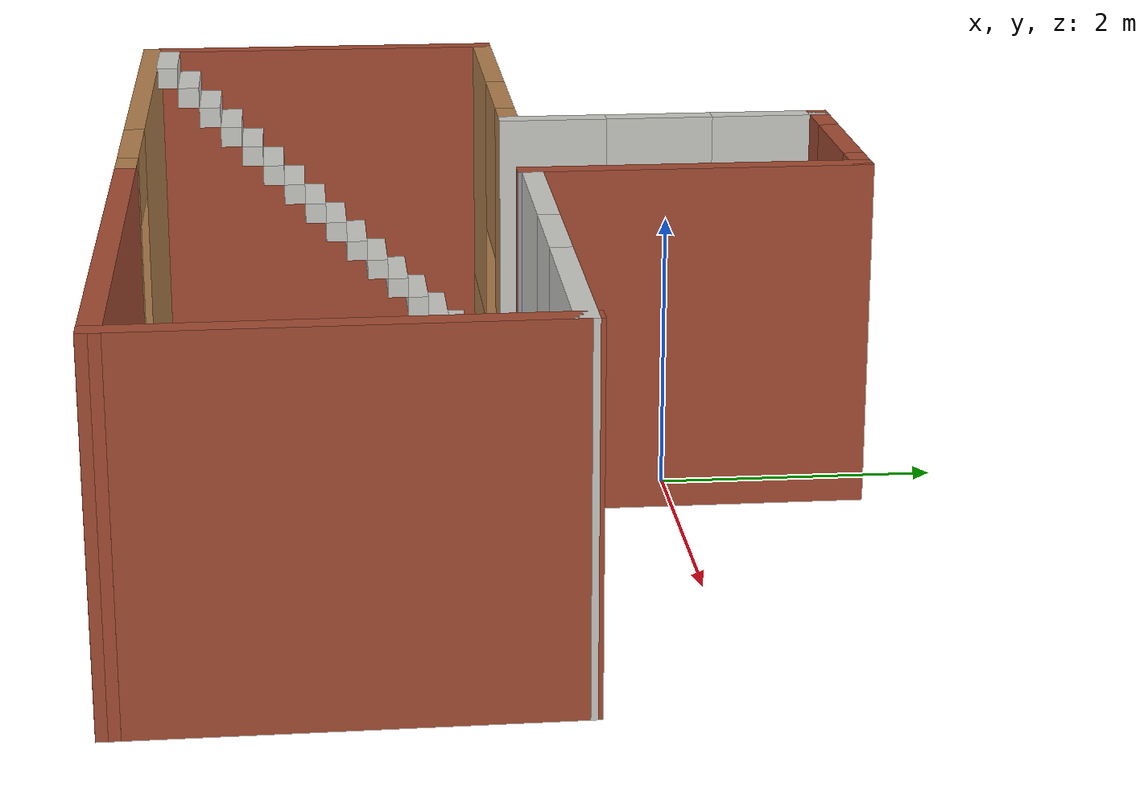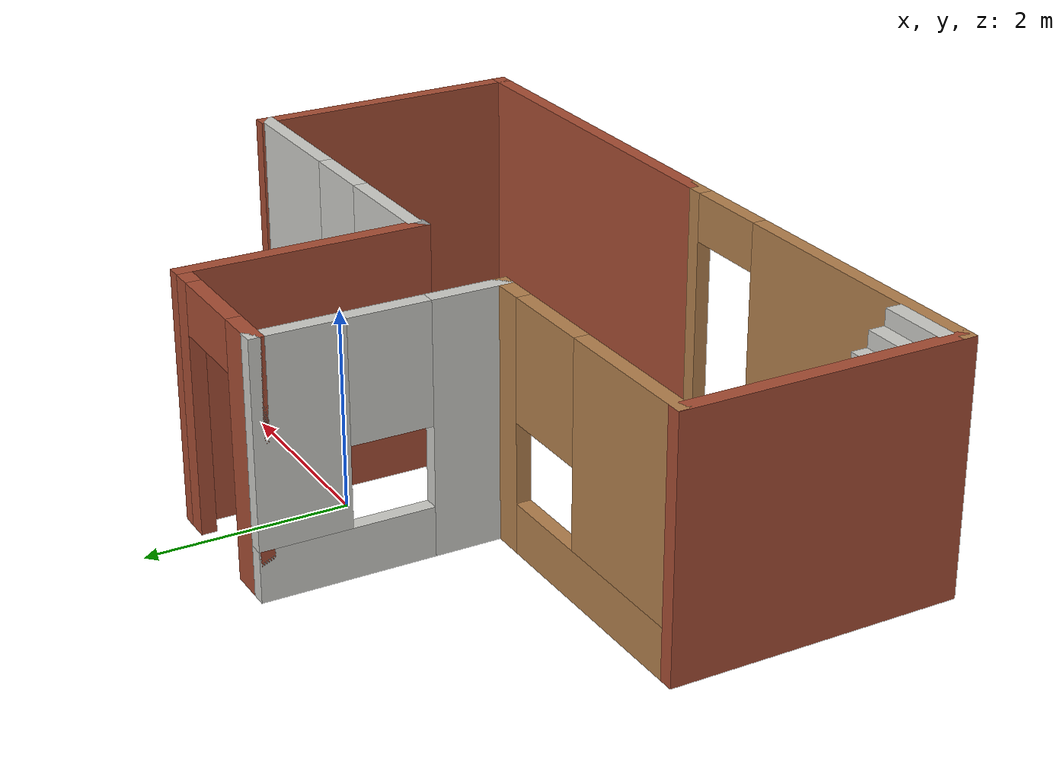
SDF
<?xml version='1.0'?>
<sdf version='1.7'>
  <model name='myspace'>
    <pose>-0.054613 -1.24662 0 0 -0 0</pose>
    <link name='Stairs_0'>
      <visual name='Stairs_0_Visual_0'>
        <pose>-3.56908 -0.045001 0.083333 0 -0 0</pose>
        <geometry>
          <box>
            <size>0.71 0.169333 0.166667</size>
          </box>
        </geometry>
        <material>
          <script>
            <uri>file://media/materials/scripts/gazebo.material</uri>
            <name>Gazebo/CeilingTiled</name>
          </script>
          <ambient>0.996078 0.47451 0.0196078 1</ambient>
        </material>
        <meta>
          <layer>0</layer>
        </meta>
      </visual>
      <collision name='Stairs_0_Collision_0'>
        <geometry>
          <box>
            <size>0.71 0.169333 0.166667</size>
          </box>
        </geometry>
        <pose>-3.56908 -0.045001 0.083333 0 -0 0</pose>
      </collision>
      <visual name='Stairs_0_Visual_1'>
        <pose>-3.56908 -0.214334 0.25 0 -0 0</pose>
        <geometry>
          <box>
            <size>0.71 0.169333 0.166667</size>
          </box>
        </geometry>
        <material>
          <script>
            <uri>file://media/materials/scripts/gazebo.material</uri>
            <name>Gazebo/CeilingTiled</name>
          </script>
          <ambient>0.996078 0.47451 0.0196078 1</ambient>
        </material>
        <meta>
          <layer>0</layer>
        </meta>
      </visual>
      <collision name='Stairs_0_Collision_1'>
        <geometry>
          <box>
            <size>0.71 0.169333 0.166667</size>
          </box>
        </geometry>
        <pose>-3.56908 -0.214334 0.25 0 -0 0</pose>
      </collision>
      <visual name='Stairs_0_Visual_2'>
        <pose>-3.56908 -0.383668 0.416667 0 -0 0</pose>
        <geometry>
          <box>
            <size>0.71 0.169333 0.166667</size>
          </box>
        </geometry>
        <material>
          <script>
            <uri>file://media/materials/scripts/gazebo.material</uri>
            <name>Gazebo/CeilingTiled</name>
          </script>
          <ambient>0.996078 0.47451 0.0196078 1</ambient>
        </material>
        <meta>
          <layer>0</layer>
        </meta>
      </visual>
      <collision name='Stairs_0_Collision_2'>
        <geometry>
          <box>
            <size>0.71 0.169333 0.166667</size>
          </box>
        </geometry>
        <pose>-3.56908 -0.383668 0.416667 0 -0 0</pose>
      </collision>
      <visual name='Stairs_0_Visual_3'>
        <pose>-3.56908 -0.553001 0.583333 0 -0 0</pose>
        <geometry>
          <box>
            <size>0.71 0.169333 0.166667</size>
          </box>
        </geometry>
        <material>
          <script>
            <uri>file://media/materials/scripts/gazebo.material</uri>
            <name>Gazebo/CeilingTiled</name>
          </script>
          <ambient>0.996078 0.47451 0.0196078 1</ambient>
        </material>
        <meta>
          <layer>0</layer>
        </meta>
      </visual>
      <collision name='Stairs_0_Collision_3'>
        <geometry>
          <box>
            <size>0.71 0.169333 0.166667</size>
          </box>
        </geometry>
        <pose>-3.56908 -0.553001 0.583333 0 -0 0</pose>
      </collision>
      <visual name='Stairs_0_Visual_4'>
        <pose>-3.56908 -0.722334 0.75 0 -0 0</pose>
        <geometry>
          <box>
            <size>0.71 0.169333 0.166667</size>
          </box>
        </geometry>
        <material>
          <script>
            <uri>file://media/materials/scripts/gazebo.material</uri>
            <name>Gazebo/CeilingTiled</name>
          </script>
          <ambient>0.996078 0.47451 0.0196078 1</ambient>
        </material>
        <meta>
          <layer>0</layer>
        </meta>
      </visual>
      <collision name='Stairs_0_Collision_4'>
        <geometry>
          <box>
            <size>0.71 0.169333 0.166667</size>
          </box>
        </geometry>
        <pose>-3.56908 -0.722334 0.75 0 -0 0</pose>
      </collision>
      <visual name='Stairs_0_Visual_5'>
        <pose>-3.56908 -0.891668 0.916667 0 -0 0</pose>
        <geometry>
          <box>
            <size>0.71 0.169333 0.166667</size>
          </box>
        </geometry>
        <material>
          <script>
            <uri>file://media/materials/scripts/gazebo.material</uri>
            <name>Gazebo/CeilingTiled</name>
          </script>
          <ambient>0.996078 0.47451 0.0196078 1</ambient>
        </material>
        <meta>
          <layer>0</layer>
        </meta>
      </visual>
      <collision name='Stairs_0_Collision_5'>
        <geometry>
          <box>
            <size>0.71 0.169333 0.166667</size>
          </box>
        </geometry>
        <pose>-3.56908 -0.891668 0.916667 0 -0 0</pose>
      </collision>
      <visual name='Stairs_0_Visual_6'>
        <pose>-3.56908 -1.061 1.08333 0 -0 0</pose>
        <geometry>
          <box>
            <size>0.71 0.169333 0.166667</size>
          </box>
        </geometry>
        <material>
          <script>
            <uri>file://media/materials/scripts/gazebo.material</uri>
            <name>Gazebo/CeilingTiled</name>
          </script>
          <ambient>0.996078 0.47451 0.0196078 1</ambient>
        </material>
        <meta>
          <layer>0</layer>
        </meta>
      </visual>
      <collision name='Stairs_0_Collision_6'>
        <geometry>
          <box>
            <size>0.71 0.169333 0.166667</size>
          </box>
        </geometry>
        <pose>-3.56908 -1.061 1.08333 0 -0 0</pose>
      </collision>
      <visual name='Stairs_0_Visual_7'>
        <pose>-3.56908 -1.23033 1.25 0 -0 0</pose>
        <geometry>
          <box>
            <size>0.71 0.169333 0.166667</size>
          </box>
        </geometry>
        <material>
          <script>
            <uri>file://media/materials/scripts/gazebo.material</uri>
            <name>Gazebo/CeilingTiled</name>
          </script>
          <ambient>0.996078 0.47451 0.0196078 1</ambient>
        </material>
        <meta>
          <layer>0</layer>
        </meta>
      </visual>
      <collision name='Stairs_0_Collision_7'>
        <geometry>
          <box>
            <size>0.71 0.169333 0.166667</size>
          </box>
        </geometry>
        <pose>-3.56908 -1.23033 1.25 0 -0 0</pose>
      </collision>
      <visual name='Stairs_0_Visual_8'>
        <pose>-3.56908 -1.39967 1.41667 0 -0 0</pose>
        <geometry>
          <box>
            <size>0.71 0.169333 0.166667</size>
          </box>
        </geometry>
        <material>
          <script>
            <uri>file://media/materials/scripts/gazebo.material</uri>
            <name>Gazebo/CeilingTiled</name>
          </script>
          <ambient>0.996078 0.47451 0.0196078 1</ambient>
        </material>
        <meta>
          <layer>0</layer>
        </meta>
      </visual>
      <collision name='Stairs_0_Collision_8'>
        <geometry>
          <box>
            <size>0.71 0.169333 0.166667</size>
          </box>
        </geometry>
        <pose>-3.56908 -1.39967 1.41667 0 -0 0</pose>
      </collision>
      <visual name='Stairs_0_Visual_9'>
        <pose>-3.56908 -1.569 1.58333 0 -0 0</pose>
        <geometry>
          <box>
            <size>0.71 0.169333 0.166667</size>
          </box>
        </geometry>
        <material>
          <script>
            <uri>file://media/materials/scripts/gazebo.material</uri>
            <name>Gazebo/CeilingTiled</name>
          </script>
          <ambient>0.996078 0.47451 0.0196078 1</ambient>
        </material>
        <meta>
          <layer>0</layer>
        </meta>
      </visual>
      <collision name='Stairs_0_Collision_9'>
        <geometry>
          <box>
            <size>0.71 0.169333 0.166667</size>
          </box>
        </geometry>
        <pose>-3.56908 -1.569 1.58333 0 -0 0</pose>
      </collision>
      <visual name='Stairs_0_Visual_10'>
        <pose>-3.56908 -1.73833 1.75 0 -0 0</pose>
        <geometry>
          <box>
            <size>0.71 0.169333 0.166667</size>
          </box>
        </geometry>
        <material>
          <script>
            <uri>file://media/materials/scripts/gazebo.material</uri>
            <name>Gazebo/CeilingTiled</name>
          </script>
          <ambient>0.996078 0.47451 0.0196078 1</ambient>
        </material>
        <meta>
          <layer>0</layer>
        </meta>
      </visual>
      <collision name='Stairs_0_Collision_10'>
        <geometry>
          <box>
            <size>0.71 0.169333 0.166667</size>
          </box>
        </geometry>
        <pose>-3.56908 -1.73833 1.75 0 -0 0</pose>
      </collision>
      <visual name='Stairs_0_Visual_11'>
        <pose>-3.56908 -1.90767 1.91667 0 -0 0</pose>
        <geometry>
          <box>
            <size>0.71 0.169333 0.166667</size>
          </box>
        </geometry>
        <material>
          <script>
            <uri>file://media/materials/scripts/gazebo.material</uri>
            <name>Gazebo/CeilingTiled</name>
          </script>
          <ambient>0.996078 0.47451 0.0196078 1</ambient>
        </material>
        <meta>
          <layer>0</layer>
        </meta>
      </visual>
      <collision name='Stairs_0_Collision_11'>
        <geometry>
          <box>
            <size>0.71 0.169333 0.166667</size>
          </box>
        </geometry>
        <pose>-3.56908 -1.90767 1.91667 0 -0 0</pose>
      </collision>
      <visual name='Stairs_0_Visual_12'>
        <pose>-3.56908 -2.077 2.08333 0 -0 0</pose>
        <geometry>
          <box>
            <size>0.71 0.169333 0.166667</size>
          </box>
        </geometry>
        <material>
          <script>
            <uri>file://media/materials/scripts/gazebo.material</uri>
            <name>Gazebo/CeilingTiled</name>
          </script>
          <ambient>0.996078 0.47451 0.0196078 1</ambient>
        </material>
        <meta>
          <layer>0</layer>
        </meta>
      </visual>
      <collision name='Stairs_0_Collision_12'>
        <geometry>
          <box>
            <size>0.71 0.169333 0.166667</size>
          </box>
        </geometry>
        <pose>-3.56908 -2.077 2.08333 0 -0 0</pose>
      </collision>
      <visual name='Stairs_0_Visual_13'>
        <pose>-3.56908 -2.24633 2.25 0 -0 0</pose>
        <geometry>
          <box>
            <size>0.71 0.169333 0.166667</size>
          </box>
        </geometry>
        <material>
          <script>
            <uri>file://media/materials/scripts/gazebo.material</uri>
            <name>Gazebo/CeilingTiled</name>
          </script>
          <ambient>0.996078 0.47451 0.0196078 1</ambient>
        </material>
        <meta>
          <layer>0</layer>
        </meta>
      </visual>
      <collision name='Stairs_0_Collision_13'>
        <geometry>
          <box>
            <size>0.71 0.169333 0.166667</size>
          </box>
        </geometry>
        <pose>-3.56908 -2.24633 2.25 0 -0 0</pose>
      </collision>
      <visual name='Stairs_0_Visual_14'>
        <pose>-3.56908 -2.41567 2.41667 0 -0 0</pose>
        <geometry>
          <box>
            <size>0.71 0.169333 0.166667</size>
          </box>
        </geometry>
        <material>
          <script>
            <uri>file://media/materials/scripts/gazebo.material</uri>
            <name>Gazebo/CeilingTiled</name>
          </script>
          <ambient>0.996078 0.47451 0.0196078 1</ambient>
        </material>
        <meta>
          <layer>0</layer>
        </meta>
      </visual>
      <collision name='Stairs_0_Collision_14'>
        <geometry>
          <box>
            <size>0.71 0.169333 0.166667</size>
          </box>
        </geometry>
        <pose>-3.56908 -2.41567 2.41667 0 -0 0</pose>
      </collision>
    </link>
    <link name='Wall_0'>
      <pose>-1.92539 -2.56338 0 0 -0 0</pose>
      <visual name='Wall_0_Visual_0'>
        <pose>-0.606848 0 1.25 0 -0 0</pose>
        <geometry>
          <box>
            <size>3.0363 0.15 2.5</size>
          </box>
        </geometry>
        <material>
          <script>
            <uri>file://media/materials/scripts/gazebo.material</uri>
            <name>Gazebo/Wood</name>
          </script>
          <ambient>1 1 1 1</ambient>
        </material>
        <meta>
          <layer>0</layer>
        </meta>
      </visual>
      <collision name='Wall_0_Collision_0'>
        <geometry>
          <box>
            <size>3.0363 0.15 2.5</size>
          </box>
        </geometry>
        <pose>-0.606848 0 1.25 0 -0 0</pose>
      </collision>
      <visual name='Wall_0_Visual_1'>
        <pose>1.96815 0 1.25 0 -0 0</pose>
        <geometry>
          <box>
            <size>0.313696 0.15 2.5</size>
          </box>
        </geometry>
        <material>
          <script>
            <uri>file://media/materials/scripts/gazebo.material</uri>
            <name>Gazebo/Wood</name>
          </script>
          <ambient>1 1 1 1</ambient>
        </material>
        <meta>
          <layer>0</layer>
        </meta>
      </visual>
      <collision name='Wall_0_Collision_1'>
        <geometry>
          <box>
            <size>0.313696 0.15 2.5</size>
          </box>
        </geometry>
        <pose>1.96815 0 1.25 0 -0 0</pose>
      </collision>
      <visual name='Wall_0_Visual_2'>
        <pose>1.3613 0 2.25 0 -0 0</pose>
        <geometry>
          <box>
            <size>0.9 0.15 0.5</size>
          </box>
        </geometry>
        <material>
          <script>
            <uri>file://media/materials/scripts/gazebo.material</uri>
            <name>Gazebo/Wood</name>
          </script>
          <ambient>1 1 1 1</ambient>
        </material>
        <meta>
          <layer>0</layer>
        </meta>
      </visual>
      <collision name='Wall_0_Collision_2'>
        <geometry>
          <box>
            <size>0.9 0.15 0.5</size>
          </box>
        </geometry>
        <pose>1.3613 0 2.25 0 -0 0</pose>
      </collision>
    </link>
    <link name='Wall_12'>
      <pose>-1.11552 1.38915 0 0 -0 1.5708</pose>
      <visual name='Wall_12_Visual_0'>
        <pose>-0.846617 0 1.25 0 -0 0</pose>
        <geometry>
          <box>
            <size>0.806765 0.15 2.5</size>
          </box>
        </geometry>
        <material>
          <script>
            <uri>file://media/materials/scripts/gazebo.material</uri>
            <name>Gazebo/CeilingTiled</name>
          </script>
          <ambient>0 1 0 1</ambient>
        </material>
        <meta>
          <layer>0</layer>
        </meta>
      </visual>
      <collision name='Wall_12_Collision_0'>
        <geometry>
          <box>
            <size>0.806765 0.15 2.5</size>
          </box>
        </geometry>
        <pose>-0.846617 0 1.25 0 -0 0</pose>
      </collision>
      <visual name='Wall_12_Visual_1'>
        <pose>0.403383 0 0.25 0 -0 0</pose>
        <geometry>
          <box>
            <size>1.69324 0.15 0.5</size>
          </box>
        </geometry>
        <material>
          <script>
            <uri>file://media/materials/scripts/gazebo.material</uri>
            <name>Gazebo/CeilingTiled</name>
          </script>
          <ambient>0 1 0 1</ambient>
        </material>
        <meta>
          <layer>0</layer>
        </meta>
      </visual>
      <collision name='Wall_12_Collision_1'>
        <geometry>
          <box>
            <size>1.69324 0.15 0.5</size>
          </box>
        </geometry>
        <pose>0.403383 0 0.25 0 -0 0</pose>
      </collision>
      <visual name='Wall_12_Visual_2'>
        <pose>0.803383 0 1.5 0 -0 0</pose>
        <geometry>
          <box>
            <size>0.893235 0.15 2</size>
          </box>
        </geometry>
        <material>
          <script>
            <uri>file://media/materials/scripts/gazebo.material</uri>
            <name>Gazebo/CeilingTiled</name>
          </script>
          <ambient>0 1 0 1</ambient>
        </material>
        <meta>
          <layer>0</layer>
        </meta>
      </visual>
      <collision name='Wall_12_Collision_2'>
        <geometry>
          <box>
            <size>0.893235 0.15 2</size>
          </box>
        </geometry>
        <pose>0.803383 0 1.5 0 -0 0</pose>
      </collision>
      <visual name='Wall_12_Visual_3'>
        <pose>-0.043235 0 1.9 0 -0 0</pose>
        <geometry>
          <box>
            <size>0.8 0.15 1.2</size>
          </box>
        </geometry>
        <material>
          <script>
            <uri>file://media/materials/scripts/gazebo.material</uri>
            <name>Gazebo/CeilingTiled</name>
          </script>
          <ambient>0 1 0 1</ambient>
        </material>
        <meta>
          <layer>0</layer>
        </meta>
      </visual>
      <collision name='Wall_12_Collision_3'>
        <geometry>
          <box>
            <size>0.8 0.15 1.2</size>
          </box>
        </geometry>
        <pose>-0.043235 0 1.9 0 -0 0</pose>
      </collision>
    </link>
    <link name='Wall_13'>
      <pose>-0.315524 2.56415 0 0 -0 0</pose>
      <visual name='Wall_13_Visual_0'>
        <pose>-0.631589 0 1.25 0 -0 0</pose>
        <geometry>
          <box>
            <size>0.486822 0.15 2.5</size>
          </box>
        </geometry>
        <material>
          <script>
            <uri>file://media/materials/scripts/gazebo.material</uri>
            <name>Gazebo/Bricks</name>
          </script>
          <ambient>1 1 1 1</ambient>
        </material>
        <meta>
          <layer>0</layer>
        </meta>
      </visual>
      <collision name='Wall_13_Collision_0'>
        <geometry>
          <box>
            <size>0.486822 0.15 2.5</size>
          </box>
        </geometry>
        <pose>-0.631589 0 1.25 0 -0 0</pose>
      </collision>
      <visual name='Wall_13_Visual_1'>
        <pose>0.693411 0 1.25 0 -0 0</pose>
        <geometry>
          <box>
            <size>0.363178 0.15 2.5</size>
          </box>
        </geometry>
        <material>
          <script>
            <uri>file://media/materials/scripts/gazebo.material</uri>
            <name>Gazebo/Bricks</name>
          </script>
          <ambient>1 1 1 1</ambient>
        </material>
        <meta>
          <layer>0</layer>
        </meta>
      </visual>
      <collision name='Wall_13_Collision_1'>
        <geometry>
          <box>
            <size>0.363178 0.15 2.5</size>
          </box>
        </geometry>
        <pose>0.693411 0 1.25 0 -0 0</pose>
      </collision>
      <visual name='Wall_13_Visual_2'>
        <pose>0.061822 0 2.25 0 -0 0</pose>
        <geometry>
          <box>
            <size>0.9 0.15 0.5</size>
          </box>
        </geometry>
        <material>
          <script>
            <uri>file://media/materials/scripts/gazebo.material</uri>
            <name>Gazebo/Bricks</name>
          </script>
          <ambient>1 1 1 1</ambient>
        </material>
        <meta>
          <layer>0</layer>
        </meta>
      </visual>
      <collision name='Wall_13_Collision_2'>
        <geometry>
          <box>
            <size>0.9 0.15 0.5</size>
          </box>
        </geometry>
        <pose>0.061822 0 2.25 0 -0 0</pose>
      </collision>
    </link>
    <link name='Wall_14'>
      <collision name='Wall_14_Collision'>
        <geometry>
          <box>
            <size>2.5 0.15 2.5</size>
          </box>
        </geometry>
        <pose>0 0 1.25 0 -0 0</pose>
      </collision>
      <visual name='Wall_14_Visual'>
        <pose>0 0 1.25 0 -0 0</pose>
        <geometry>
          <box>
            <size>2.5 0.15 2.5</size>
          </box>
        </geometry>
        <material>
          <script>
            <uri>file://media/materials/scripts/gazebo.material</uri>
            <name>Gazebo/Bricks</name>
          </script>
          <ambient>1 1 1 1</ambient>
        </material>
        <meta>
          <layer>0</layer>
        </meta>
      </visual>
      <pose>0.484476 1.38915 0 0 -0 -1.5708</pose>
    </link>
    <link name='Wall_15'>
      <collision name='Wall_15_Collision'>
        <geometry>
          <box>
            <size>0.15 0.15 2.5</size>
          </box>
        </geometry>
        <pose>0 0 1.25 0 -0 0</pose>
      </collision>
      <visual name='Wall_15_Visual'>
        <pose>0 0 1.25 0 -0 0</pose>
        <geometry>
          <box>
            <size>0.15 0.15 2.5</size>
          </box>
        </geometry>
        <material>
          <script>
            <uri>file://media/materials/scripts/gazebo.material</uri>
            <name>Gazebo/Grey</name>
          </script>
          <ambient>1 1 1 1</ambient>
        </material>
        <meta>
          <layer>0</layer>
        </meta>
      </visual>
      <pose>0.484476 0.214152 0 0 -0 0</pose>
    </link>
    <link name='Wall_2'>
      <collision name='Wall_2_Collision'>
        <geometry>
          <box>
            <size>4 0.15 2.5</size>
          </box>
        </geometry>
        <pose>0 0 1.25 0 -0 0</pose>
      </collision>
      <visual name='Wall_2_Visual'>
        <pose>0 0 1.25 0 -0 0</pose>
        <geometry>
          <box>
            <size>4 0.15 2.5</size>
          </box>
        </geometry>
        <material>
          <script>
            <uri>file://media/materials/scripts/gazebo.material</uri>
            <name>Gazebo/Bricks</name>
          </script>
          <ambient>1 1 1 1</ambient>
        </material>
        <meta>
          <layer>0</layer>
        </meta>
      </visual>
      <pose>2.04961 -2.56338 0 0 -0 0</pose>
    </link>
    <link name='Wall_3'>
      <collision name='Wall_3_Collision'>
        <geometry>
          <box>
            <size>2.98552 0.15 2.5</size>
          </box>
        </geometry>
        <pose>0 0 1.25 0 -0 0</pose>
      </collision>
      <visual name='Wall_3_Visual'>
        <pose>0 0 1.25 0 -0 0</pose>
        <geometry>
          <box>
            <size>2.98552 0.15 2.5</size>
          </box>
        </geometry>
        <material>
          <script>
            <uri>file://media/materials/scripts/gazebo.material</uri>
            <name>Gazebo/Bricks</name>
          </script>
          <ambient>1 1 1 1</ambient>
        </material>
        <meta>
          <layer>0</layer>
        </meta>
      </visual>
      <pose>3.9599 -1.14569 0 0 -0 1.58117</pose>
    </link>
    <link name='Wall_4'>
      <pose>2.27019 0.24257 0 0 -0 3.14159</pose>
      <visual name='Wall_4_Visual_0'>
        <pose>-0.993168 0 1.25 0 -0 0</pose>
        <geometry>
          <box>
            <size>1.51366 0.15 2.5</size>
          </box>
        </geometry>
        <material>
          <script>
            <uri>file://media/materials/scripts/gazebo.material</uri>
            <name>Gazebo/CeilingTiled</name>
          </script>
          <ambient>1 1 1 1</ambient>
        </material>
        <meta>
          <layer>0</layer>
        </meta>
      </visual>
      <collision name='Wall_4_Collision_0'>
        <geometry>
          <box>
            <size>1.51366 0.15 2.5</size>
          </box>
        </geometry>
        <pose>-0.993168 0 1.25 0 -0 0</pose>
      </collision>
      <visual name='Wall_4_Visual_1'>
        <pose>0.756832 0 0.25 0 -0 0</pose>
        <geometry>
          <box>
            <size>1.98634 0.15 0.5</size>
          </box>
        </geometry>
        <material>
          <script>
            <uri>file://media/materials/scripts/gazebo.material</uri>
            <name>Gazebo/CeilingTiled</name>
          </script>
          <ambient>1 1 1 1</ambient>
        </material>
        <meta>
          <layer>0</layer>
        </meta>
      </visual>
      <collision name='Wall_4_Collision_1'>
        <geometry>
          <box>
            <size>1.98634 0.15 0.5</size>
          </box>
        </geometry>
        <pose>0.756832 0 0.25 0 -0 0</pose>
      </collision>
      <visual name='Wall_4_Visual_2'>
        <pose>1.15683 0 1.5 0 -0 0</pose>
        <geometry>
          <box>
            <size>1.18634 0.15 2</size>
          </box>
        </geometry>
        <material>
          <script>
            <uri>file://media/materials/scripts/gazebo.material</uri>
            <name>Gazebo/CeilingTiled</name>
          </script>
          <ambient>1 1 1 1</ambient>
        </material>
        <meta>
          <layer>0</layer>
        </meta>
      </visual>
      <collision name='Wall_4_Collision_2'>
        <geometry>
          <box>
            <size>1.18634 0.15 2</size>
          </box>
        </geometry>
        <pose>1.15683 0 1.5 0 -0 0</pose>
      </collision>
      <visual name='Wall_4_Visual_3'>
        <pose>0.163663 0 1.9 0 -0 0</pose>
        <geometry>
          <box>
            <size>0.8 0.15 1.2</size>
          </box>
        </geometry>
        <material>
          <script>
            <uri>file://media/materials/scripts/gazebo.material</uri>
            <name>Gazebo/CeilingTiled</name>
          </script>
          <ambient>1 1 1 1</ambient>
        </material>
        <meta>
          <layer>0</layer>
        </meta>
      </visual>
      <collision name='Wall_4_Collision_3'>
        <geometry>
          <box>
            <size>0.8 0.15 1.2</size>
          </box>
        </geometry>
        <pose>0.163663 0 1.9 0 -0 0</pose>
      </collision>
    </link>
    <link name='Wall_8'>
      <pose>-2.54052 0.214152 0 0 -0 3.14159</pose>
      <visual name='Wall_8_Visual_0'>
        <pose>-1.27539 0 1.25 0 -0 0</pose>
        <geometry>
          <box>
            <size>0.449213 0.15 2.5</size>
          </box>
        </geometry>
        <material>
          <script>
            <uri>file://media/materials/scripts/gazebo.material</uri>
            <name>Gazebo/Wood</name>
          </script>
          <ambient>1 1 1 1</ambient>
        </material>
        <meta>
          <layer>0</layer>
        </meta>
      </visual>
      <collision name='Wall_8_Collision_0'>
        <geometry>
          <box>
            <size>0.449213 0.15 2.5</size>
          </box>
        </geometry>
        <pose>-1.27539 0 1.25 0 -0 0</pose>
      </collision>
      <visual name='Wall_8_Visual_1'>
        <pose>0.224606 0 0.25 0 -0 0</pose>
        <geometry>
          <box>
            <size>2.55079 0.15 0.5</size>
          </box>
        </geometry>
        <material>
          <script>
            <uri>file://media/materials/scripts/gazebo.material</uri>
            <name>Gazebo/Wood</name>
          </script>
          <ambient>1 1 1 1</ambient>
        </material>
        <meta>
          <layer>0</layer>
        </meta>
      </visual>
      <collision name='Wall_8_Collision_1'>
        <geometry>
          <box>
            <size>2.55079 0.15 0.5</size>
          </box>
        </geometry>
        <pose>0.224606 0 0.25 0 -0 0</pose>
      </collision>
      <visual name='Wall_8_Visual_2'>
        <pose>0.709606 0 1.5 0 -0 0</pose>
        <geometry>
          <box>
            <size>1.58079 0.15 2</size>
          </box>
        </geometry>
        <material>
          <script>
            <uri>file://media/materials/scripts/gazebo.material</uri>
            <name>Gazebo/Wood</name>
          </script>
          <ambient>1 1 1 1</ambient>
        </material>
        <meta>
          <layer>0</layer>
        </meta>
      </visual>
      <collision name='Wall_8_Collision_2'>
        <geometry>
          <box>
            <size>1.58079 0.15 2</size>
          </box>
        </geometry>
        <pose>0.709606 0 1.5 0 -0 0</pose>
      </collision>
      <visual name='Wall_8_Visual_3'>
        <pose>-0.565787 0 1.9 0 -0 0</pose>
        <geometry>
          <box>
            <size>0.97 0.15 1.2</size>
          </box>
        </geometry>
        <material>
          <script>
            <uri>file://media/materials/scripts/gazebo.material</uri>
            <name>Gazebo/Wood</name>
          </script>
          <ambient>1 1 1 1</ambient>
        </material>
        <meta>
          <layer>0</layer>
        </meta>
      </visual>
      <collision name='Wall_8_Collision_3'>
        <geometry>
          <box>
            <size>0.97 0.15 1.2</size>
          </box>
        </geometry>
        <pose>-0.565787 0 1.9 0 -0 0</pose>
      </collision>
    </link>
    <link name='Wall_9'>
      <collision name='Wall_9_Collision'>
        <geometry>
          <box>
            <size>2.92755 0.15 2.5</size>
          </box>
        </geometry>
        <pose>0 0 1.25 0 -0 0</pose>
      </collision>
      <visual name='Wall_9_Visual'>
        <pose>0 0 1.25 0 -0 0</pose>
        <geometry>
          <box>
            <size>2.92755 0.15 2.5</size>
          </box>
        </geometry>
        <material>
          <script>
            <uri>file://media/materials/scripts/gazebo.material</uri>
            <name>Gazebo/Bricks</name>
          </script>
          <ambient>1 1 1 1</ambient>
        </material>
        <meta>
          <layer>0</layer>
        </meta>
      </visual>
      <pose>-3.97539 -1.17461 0 0 -0 -1.5708</pose>
    </link>
    <static>1</static>
  </model>
</sdf>
